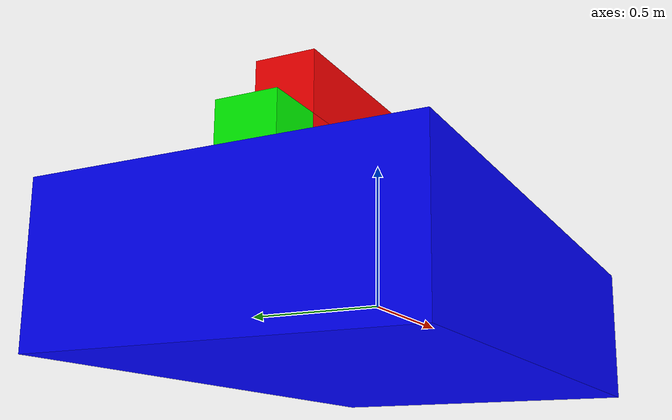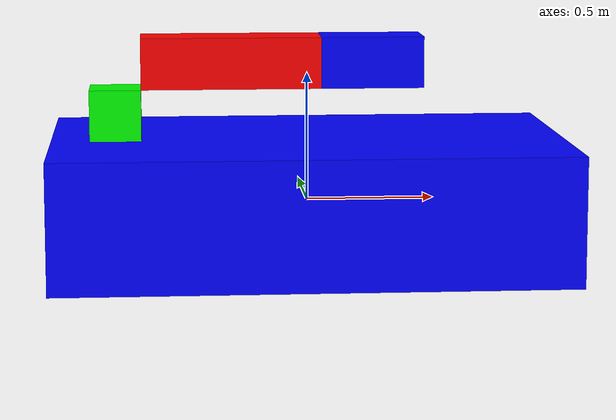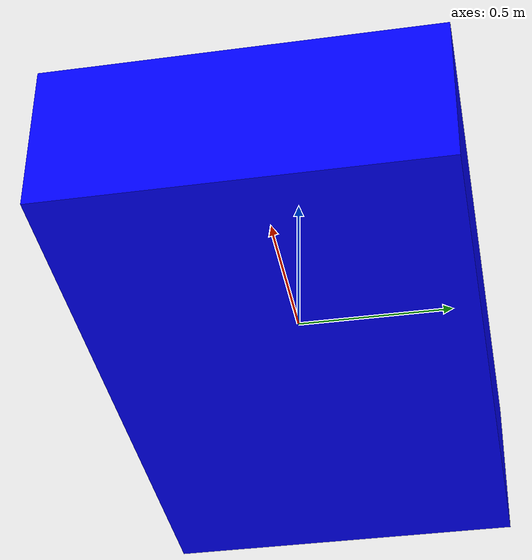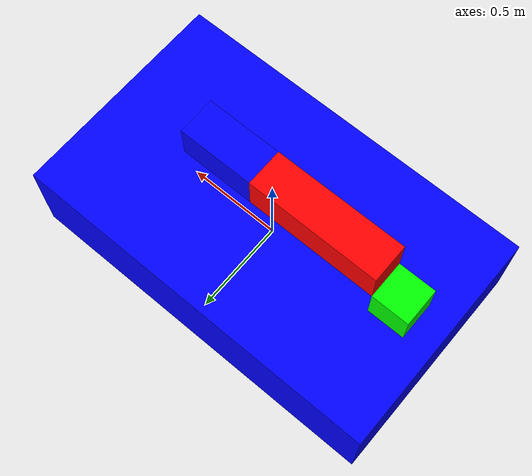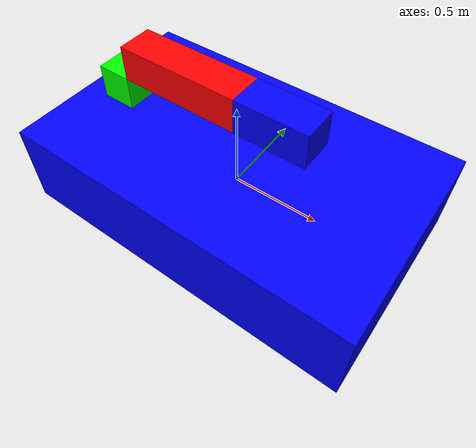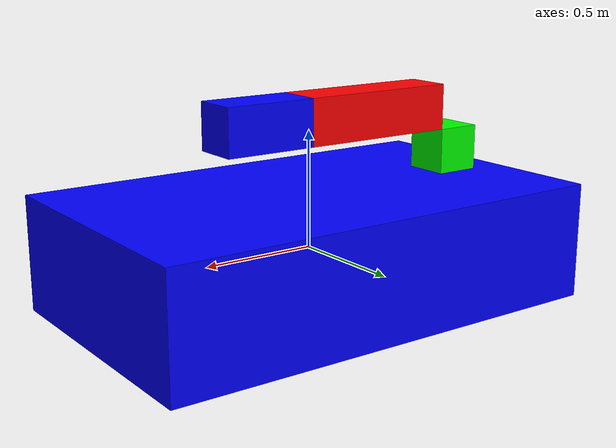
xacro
<?xml version = "1.0"?>
<robot xmlns:xacro="http://www.ros.org/wiki/xacro" name="bobbot">

    <!--(ros2 run joint_state_publisher_gui joint_state_publisher_gui) to edit joint variables-->

    <!--Important: The origin values for joints are wrt frame of parent link. The origin values of link are wrt to their joint. (of which the are child)-->

    <!--xacro properties-->
    <xacro:property name ="base_mass" value ="1.0"/>
    <xacro:property name ="arm_link_1_mass" value = "0.5"/>
    <xacro:property name ="arm_link_2_mass" value = "0.8"/>
    <xacro:property name ="arm_link_3_mass" value = "0.7"/>
    <xacro:property name ="base_link_frame_limit" value = "2.36"/>

    <!--xacro includes-->
    <xacro:include filename = "materials.xacro"/>
    <xacro:include filename = "macros.xacro"/>

    <link name = "dummy_link"></link>

    <link name = "revolve_disc"></link>

    <link name="base_link">
        <visual>
            <material name ="black">
                <color rgba = "0 0 1 1"/>
            </material>
            <origin xyz = "0 0 0" rpy = "0 0 0"/>
            <geometry>
                <box size = "2 1.2 0.5"/>
            </geometry>
        </visual>

        <collision>
            <origin xyz = "0 0 0" rpy = "0 0 0"/>
            <geometry>
                <box size = "2 1.2 0.5"/>
            </geometry>
        </collision>

        <xacro:Inertial_Box mass = "${base_mass}" x = "2" y = "1.2" z = "0.5"> <!--check with geometery size tag-->
            <origin xyz ="0 0 0" rpy = "0 0 0"/>
        </xacro:Inertial_Box>
    </link>

    <link name = "arm_link_1">
        <visual>
            <material name = "green"/>
            <origin xyz = "0 0 0.1" rpy = "0 0 0"/>
            <geometry>
                <box size = "0.2 0.2 0.2"/>
            </geometry>
        </visual>

        <collision>
            <origin xyz = "0 0 0.1" rpy = "0 0 0"/>
            <geometry>
                <box size = "0.2 0.2 0.2"/>
            </geometry>
        </collision>

        <xacro:Inertial_Box mass = "${arm_link_1_mass}" x = "0.2" y = "0.2" z = "0.2">
            <origin xyz = "0 0 0.1" rpy = "0 0 0"/>
        </xacro:Inertial_Box>
    </link>

    <link name = "arm_link_2">
        <visual>
            <material name = "red"/>
            <origin xyz = "0.35 0 0.1" rpy = "0 0 0"/>
            <geometry>
                <box size = "0.7 0.2 0.2"/>
            </geometry>
        </visual>

        <collision>
            <origin xyz = "0.35 0 0.1" rpy = "0 0 0"/>
            <geometry>
                <box size = "0.7 0.2 0.2"/>
            </geometry>
        </collision>

        <xacro:Inertial_Box mass = "${arm_link_2_mass}" x = "0.7" y = "0.2" z = "0.2">
            <origin xyz = "0.35 0 0.1" rpy = "0 0 0"/>
        </xacro:Inertial_Box>
    </link>

    <link name = "arm_link_3">
        <visual>
            <material name = "blue"/>
            <origin xyz = "0.2 0 0" rpy = "0 0 0"/>
            <geometry>
                <box size = "0.4 0.2 0.2"/>
            </geometry>
        </visual>

        <collision>
            <origin xyz = "0.2 0 0" rpy = "0 0 0"/>
            <geometry>
                <box size = "0.4 0.2 0.2"/>
            </geometry>
        </collision>

        <xacro:Inertial_Box mass = "${arm_link_3_mass}" x = "0.4" y = "0.2" z = "0.2">
            <origin xyz = "0.2 0 0" rpy = "0 0 0"/>
        </xacro:Inertial_Box>
    </link>

    <!--Whenever turning joints not rendered, set them to fixed and then change back-->

    <joint name = "dummy_joint" type = "fixed">
        <parent link = "dummy_link"/>
        <child link = "base_link"/>
        <origin xyz = "0 0 0" rpy = "0 0 0"/>
    </joint>

    <joint name="revolve_joint" type ="continuous">
        <parent link="revolve_disc"/>
        <child link="arm_link_1"/>
        <origin xyz = "-0.75 0 0.25" rpy = "0 0 0"/>
        <axis xyz = "0 0 1"/>
    </joint>

    <joint name="base_link_frame" type="prismatic">
        <origin xyz="0 0 0" rpy="0 0 0"/>
        <parent link = "base_link"/>
        <child link = "revolve_disc"/>
        <axis xyz="1 0 0"/>
        <limit lower="0" upper="1" velocity="10" effort="100"/>
    </joint>

    <joint name="frame_1" type="revolute">
        <origin xyz="0.1 0 0.2" rpy="0 0 0"/>
        <parent link="arm_link_1"/>
        <child link="arm_link_2"/>
        <axis xyz="0 -1 0"/>
        <limit lower="0" upper="1.6" velocity="10" effort="100"/>
    </joint>

    <joint name="frame_2" type="revolute">
        <origin xyz="0.7 0 0.1" rpy="0 0 0"/>
        <parent link="arm_link_2"/>
        <child link="arm_link_3"/>
        <axis xyz="0 0 1"/>
        <limit lower="-1.6" upper="1.6" velocity="10" effort="100"/>
    </joint>

</robot>

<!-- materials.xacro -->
<robot xmlns:xacro = "http://www.ros.org/wiki/xacro">

    <material name ="black">
        <color rgba = "0 0 0 1"/>
    </material>

    <material name = "white">
        <color rgba = "1 1 1 1"/>
    </material>

    <material name = "red">
        <color rgba = "1 0 0 1"/>
    </material>

    <material name = "green">
        <color rgba = "0 1 0 1"/>
    </material>

    <material name = "blue">
        <color rgba = "0 0 1 1"/>
    </material>

</robot>

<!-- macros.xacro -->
<robot xmlns:xacro="http://www.ros.org/wiki/xacro">

    <!-- Macro for defining inertia based on box dimensions and mass -->
    <xacro:macro name="Inertial_Box" params="mass x y z *origin">
        <inertial>
            <xacro:insert_block name="origin"/> <!-- Use origin parameter from the call -->
            <mass value="${mass}"/>
            <inertia  ixx="${(1.0/12.0) * mass * (y*y + z*z)}" ixy="0.0" ixz="0.0"
                      iyy="${(1.0/12.0) * mass * (x*x + z*z)}" iyz="0.0"
                      izz="${(1.0/12.0) * mass * (x*x + y*y)}" />
        </inertial>
    </xacro:macro>

</robot>
